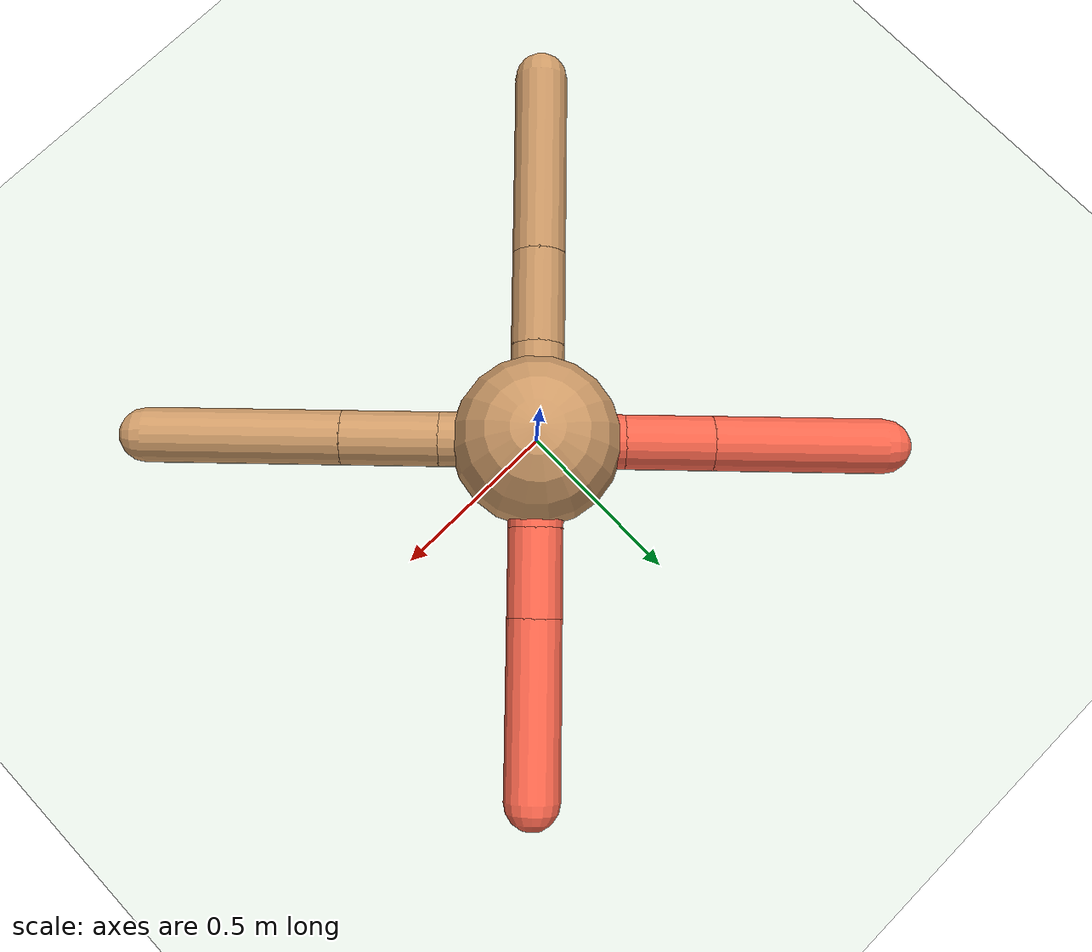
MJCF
<mujoco model="ant">
  <compiler angle="degree" coordinate="local" inertiafromgeom="true"/>
  <option integrator="RK4" timestep="0.01"/>
  <default>
    <joint armature="1" damping="1" limited="true"/>
    <geom conaffinity="0" condim="3" density="5.0" friction="1 0.5 0.5" margin="0.01" rgba="0.8 0.6 0.4 1"/>
  </default>
  <asset>
    <texture builtin="flat" height="1278" mark="cross" markrgb="1 1 1" name="texgeom" random="0.01" rgb1="0.8 0.6 0.4" rgb2="0.8 0.6 0.4" type="cube" width="127"/>
    <texture builtin="checker" height="100" name="texplane" rgb1=".2 .3 .4" rgb2=".1 0.15 0.2" type="2d" width="100"/>
    <material name="MatPlane" reflectance="0.5" texture="texplane" texrepeat="1 1" texuniform="true"/>
    <material name="geom" texture="texgeom" texuniform="true"/>
  </asset>
  <worldbody>
    <light cutoff="100" diffuse="1 1 1" dir="-0 0 -1.3" directional="true" exponent="1" pos="0 0 1.3" specular=".1 .1 .1"/>
    <geom conaffinity="1" condim="3" material="MatPlane" name="floor" pos="0 0 0" rgba="0.8 0.9 0.8 1" size="40 40 40" type="plane"/>
    <body name="torso" pos="0 0 0">
      <camera name="track" mode="trackcom" pos="0 -3 0.3" xyaxes="1 0 0 0 0 1"/>
      <geom name="torso_geom" pos="0 0 0" size="0.25" type="sphere"/>
      <joint armature="0" damping="0" limited="false" margin="0.01" name="root" pos="0 0 0" type="free"/>
      <!-- Disabled and shortened front-left leg -->
      <body name="front_left_leg" pos="0 0 0">
        <geom fromto="0.0 0.0 0.0 0.18 0.18 0.0" name="aux_1_geom" size="0.08" type="capsule" rgba="0.98 0.4 0.3 1.0"/>
        <body name="aux_1" pos="0.18 0.18 0">
          <joint axis="0 0 1" name="hip_1" pos="0.0 0.0 0.0" range="-30 30" type="hinge"/>
          <geom fromto="0.0 0.0 0.0 0.18 0.18 0.0" name="left_leg_geom" size="0.08" type="capsule" rgba="0.98 0.4 0.3 1.0"/>
          <body pos="0.18 0.18 0">
            <joint axis="-1 1 0" name="ankle_1" pos="0.0 0.0 0.0" range="30 70" type="hinge"/>
            <geom fromto="0.0 0.0 0.0 0.35 0.35 0.0" name="left_ankle_geom" size="0.08" type="capsule" rgba="0.98 0.4 0.3 1.0"/>
          </body>
        </body>
      </body>
      <!-- Disabled and shortened front-right leg -->
      <body name="front_right_leg" pos="0 0 0">
        <geom fromto="0.0 0.0 0.0 -0.18 0.18 0.0" name="aux_2_geom" size="0.08" type="capsule" rgba="0.98 0.4 0.3 1.0"/>
        <body name="aux_2" pos="-0.18 0.18 0">
          <joint axis="0 0 1" name="hip_2" pos="0.0 0.0 0.0" range="-30 30" type="hinge"/>
          <geom fromto="0.0 0.0 0.0 -0.18 0.18 0.0" name="right_leg_geom" size="0.08" type="capsule" rgba="0.98 0.4 0.3 1.0"/>
          <body pos="-0.18 0.18 0">
            <joint axis="1 1 0" name="ankle_2" pos="0.0 0.0 0.0" range="-70 -30" type="hinge"/>
            <geom fromto="0.0 0.0 0.0 -0.35 0.35 0.0" name="right_ankle_geom" size="0.08" type="capsule" rgba="0.98 0.4 0.3 1.0"/>
          </body>
        </body>
      </body>
      <body name="back_leg" pos="0 0 0">
        <geom fromto="0.0 0.0 0.0 -0.2 -0.2 0.0" name="aux_3_geom" size="0.08" type="capsule"/>
        <body name="aux_3" pos="-0.2 -0.2 0">
          <joint axis="0 0 1" name="hip_3" pos="0.0 0.0 0.0" range="-30 30" type="hinge"/>
          <geom fromto="0.0 0.0 0.0 -0.2 -0.2 0.0" name="back_leg_geom" size="0.08" type="capsule"/>
          <body pos="-0.2 -0.2 0">
            <joint axis="-1 1 0" name="ankle_3" pos="0.0 0.0 0.0" range="-70 -30" type="hinge"/>
            <geom fromto="0.0 0.0 0.0 -0.4 -0.4 0.0" name="third_ankle_geom" size="0.08" type="capsule"/>
          </body>
        </body>
      </body>
      <body name="right_back_leg" pos="0 0 0">
        <geom fromto="0.0 0.0 0.0 0.2 -0.2 0.0" name="aux_4_geom" size="0.08" type="capsule"/>
        <body name="aux_4" pos="0.2 -0.2 0">
          <joint axis="0 0 1" name="hip_4" pos="0.0 0.0 0.0" range="-30 30" type="hinge"/>
          <geom fromto="0.0 0.0 0.0 0.2 -0.2 0.0" name="rightback_leg_geom" size="0.08" type="capsule"/>
          <body pos="0.2 -0.2 0">
            <joint axis="1 1 0" name="ankle_4" pos="0.0 0.0 0.0" range="30 70" type="hinge"/>
            <geom fromto="0.0 0.0 0.0 0.4 -0.4 0.0" name="fourth_ankle_geom" size="0.08" type="capsule"/>
          </body>
        </body>
      </body>
    </body>
  </worldbody>
  <actuator>
    <motor ctrllimited="true" ctrlrange="-1.0 1.0" joint="hip_4" gear="150"/>
    <motor ctrllimited="true" ctrlrange="-1.0 1.0" joint="ankle_4" gear="150"/>
    <motor ctrllimited="true" ctrlrange="-1.0 1.0" joint="hip_1" gear="150"/>
    <motor ctrllimited="true" ctrlrange="-1.0 1.0" joint="ankle_1" gear="150"/>
    <motor ctrllimited="true" ctrlrange="-1.0 1.0" joint="hip_2" gear="150"/>
    <motor ctrllimited="true" ctrlrange="-1.0 1.0" joint="ankle_2" gear="150"/>
    <motor ctrllimited="true" ctrlrange="-1.0 1.0" joint="hip_3" gear="150"/>
    <motor ctrllimited="true" ctrlrange="-1.0 1.0" joint="ankle_3" gear="150"/>
  </actuator>
</mujoco>
